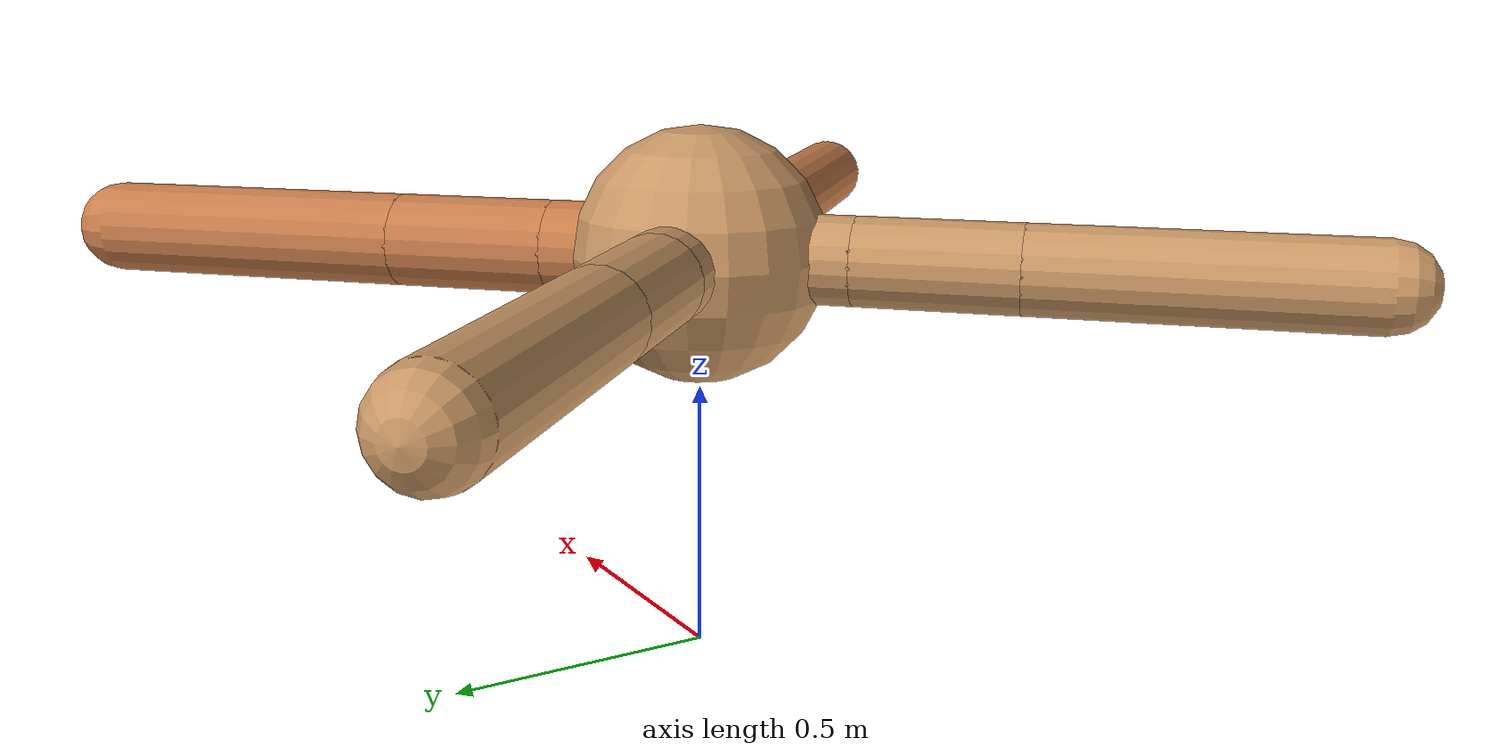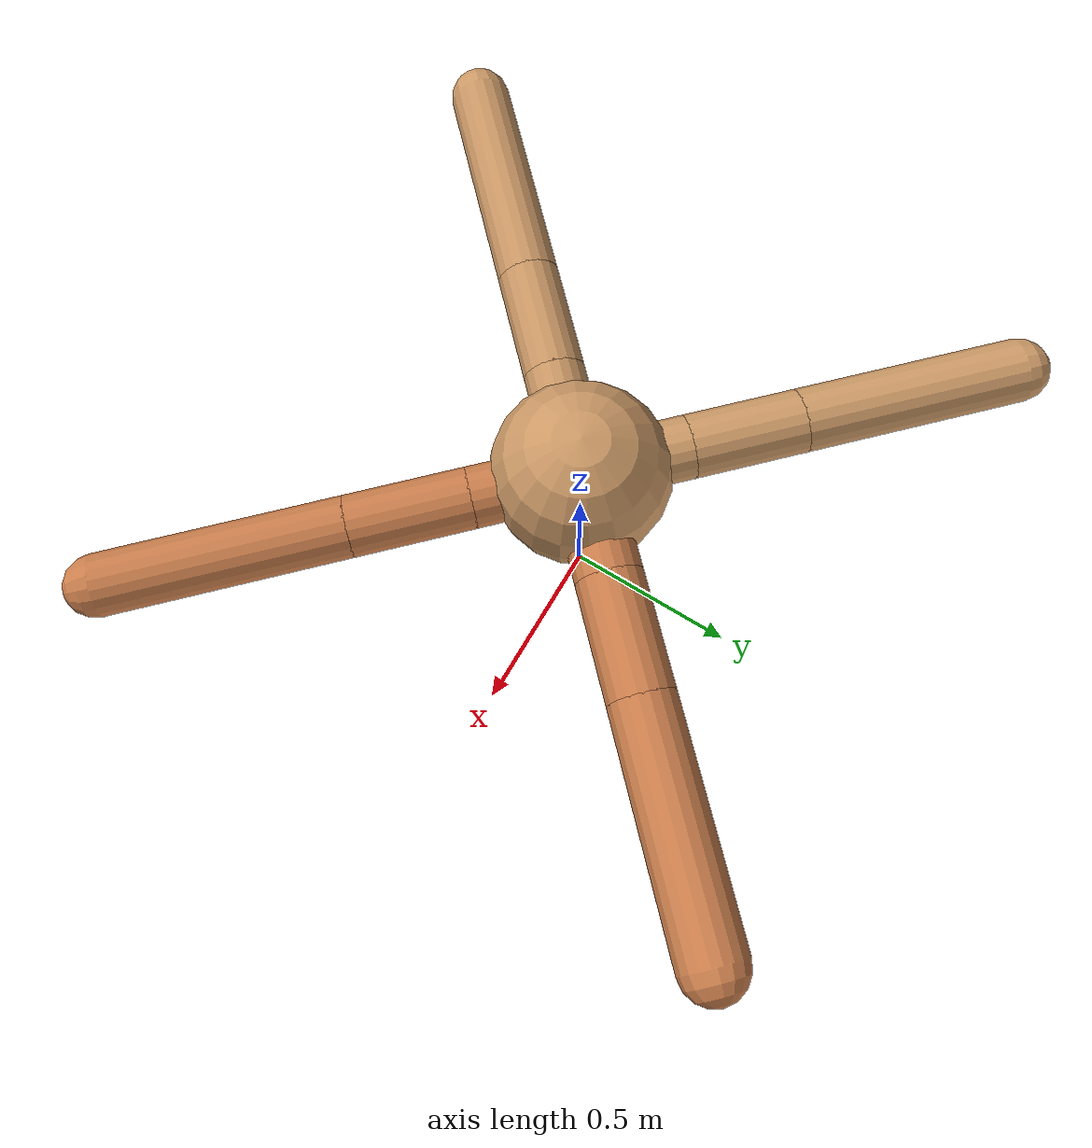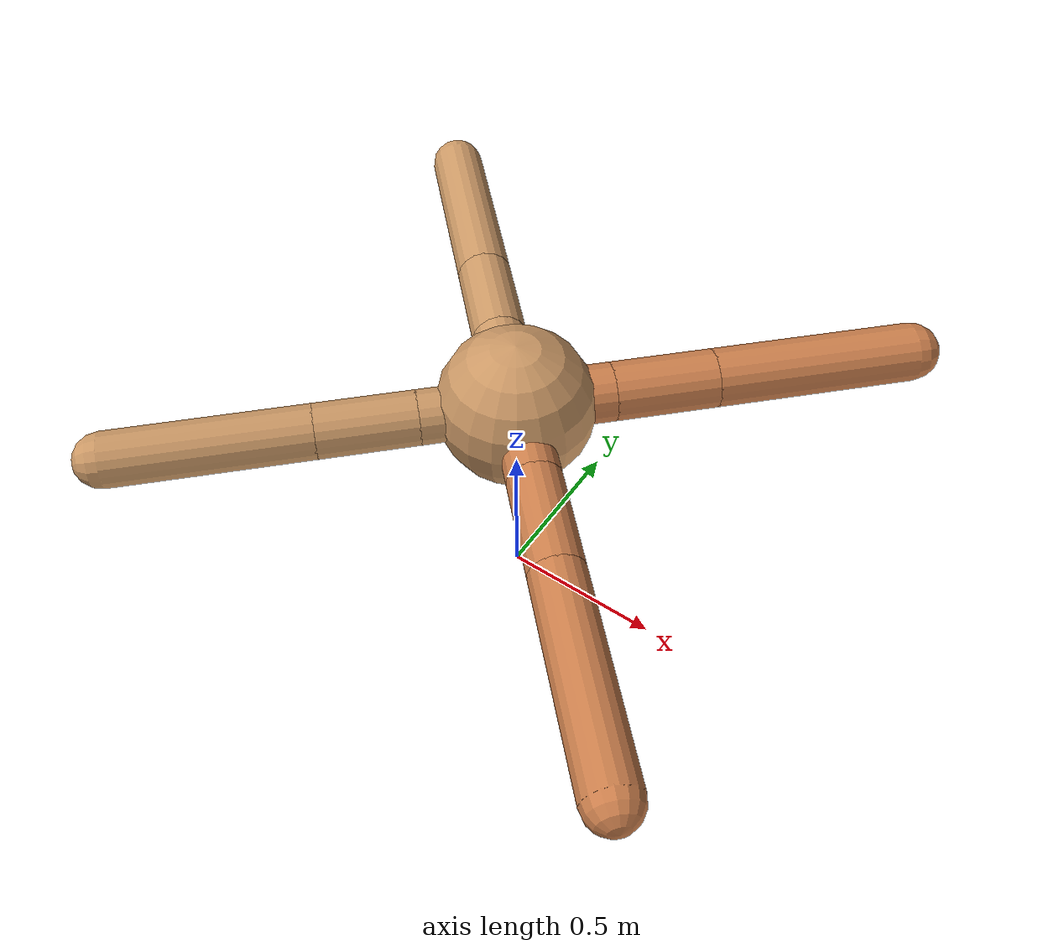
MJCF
<?xml version="1.0" ?>
<mujoco model="ant">

	<compiler angle="degree" coordinate="local" inertiafromgeom="true"/>

	<option integrator="RK4" timestep="0.01"/>

	<custom>

		<numeric data="0.0 0.0 0.55 1.0 0.0 0.0 0.0 0.0 1.0 0.0 -1.0 0.0 -1.0 0.0 1.0" name="init_qpos"/>

	</custom>

	<default>

		<joint armature="1" damping="1" limited="true"/>

		<geom conaffinity="0" condim="3" density="5.0" friction="1.5 0.1 0.1" margin="0.01" rgba="0.8 0.6 0.4 1"/>

	</default>

	<worldbody>

		<body name="torso" pos="0 0 0.75">

			<geom name="torso_geom" pos="0 0 0" size="0.2336301848781855" type="sphere"/>

			<!--joint armature="0" damping="0" limited="false" margin="0.01" name="root" pos="0 0 0" type="free"/-->

			<body name="front_left_leg" pos="0 0 0">

				<geom fromto="0 0 0 0.2 0.2 0" name="aux_1_geom" size="0.08695022410967736" type="capsule" rgba=".8 .5 .3 1"/>

				<body name="aux_1" pos="0.2 0.2 0">

					<joint axis="0 0 1" name="hip_1" pos="0.0 0.0 0.0" range="-40 40" type="hinge"/>

					<geom fromto="0 0 0 0.2152056471092676 0.2152056471092676 0" name="left_leg_geom" size="0.08695022410967736" type="capsule" rgba=".8 .5 .3 1"/>

					<body pos="0.2152056471092676 0.2152056471092676 0" name="front_left_foot">

						<joint axis="-1 1 0" name="ankle_1" pos="0.0 0.0 0.0" range="30 100" type="hinge"/>

						<geom fromto="0 0 0 0.4304112942185352 0.4304112942185352 0" name="left_ankle_geom" size="0.08695022410967736" type="capsule" rgba=".8 .5 .3 1"/>

					</body>

				</body>

			</body>

			<body name="front_right_leg" pos="0 0 0">

				<geom fromto="0 0 0 -0.2 0.2 0" name="aux_2_geom" size="0.08324727024132528" type="capsule"/>

				<body name="aux_2" pos="-0.2 0.2 0">

					<joint axis="0 0 1" name="hip_2" pos="0.0 0.0 0.0" range="-40 40" type="hinge"/>

					<geom fromto="0 0 0 -0.20816990368824628 0.20816990368824628 0" name="right_leg_geom" size="0.08324727024132528" type="capsule"/>

					<body pos="-0.20816990368824628 0.20816990368824628 0" name="front_right_foot">

						<joint axis="1 1 0" name="ankle_2" pos="0.0 0.0 0.0" range="-100 -30" type="hinge"/>

						<geom fromto="0 0 0 -0.41633980737649257 0.41633980737649257 0" name="right_ankle_geom" size="0.08324727024132528" type="capsule"/>

					</body>

				</body>

			</body>

			<body name="left_back_leg" pos="0 0 0">

				<geom fromto="0 0 0 -0.2 -0.2 0" name="aux_3_geom" size="0.08059210184880744" type="capsule"/>

				<body name="aux_3" pos="-0.2 -0.2 0">

					<joint axis="0 0 1" name="hip_3" pos="0.0 0.0 0.0" range="-40 40" type="hinge"/>

					<geom fromto="0 0 0 -0.20724500792547343 -0.20724500792547343 0" name="back_leg_geom" size="0.08059210184880744" type="capsule"/>

					<body pos="-0.20724500792547343 -0.20724500792547343 0" name="left_back_foot">

						<joint axis="-1 1 0" name="ankle_3" pos="0.0 0.0 0.0" range="-100 -30" type="hinge"/>

						<geom fromto="0 0 0 -0.41449001585094686 -0.41449001585094686 0" name="third_ankle_geom" size="0.08059210184880744" type="capsule"/>

					</body>

				</body>

			</body>

			<body name="right_back_leg" pos="0 0 0">

				<geom fromto="0 0 0 0.2 -0.2 0" name="aux_4_geom" size="0.07961816170992761" type="capsule" rgba=".8 .5 .3 1"/>

				<body name="aux_4" pos="0.2 -0.2 0">

					<joint axis="0 0 1" name="hip_4" pos="0.0 0.0 0.0" range="-40 40" type="hinge"/>

					<geom fromto="0 0 0 0.21988161266721884 -0.21988161266721884 0" name="rightback_leg_geom" size="0.07961816170992761" type="capsule" rgba=".8 .5 .3 1"/>

					<body pos="0.21988161266721884 -0.21988161266721884 0" name="right_back_foot">

						<joint axis="1 1 0" name="ankle_4" pos="0.0 0.0 0.0" range="30 100" type="hinge"/>

						<geom fromto="0 0 0 0.4397632253344377 -0.4397632253344377 0" name="fourth_ankle_geom" size="0.07961816170992761" type="capsule" rgba=".8 .5 .3 1"/>

					</body>

				</body>

			</body>

		</body>

	</worldbody>

	<actuator>

		<motor ctrllimited="true" ctrlrange="-1.0 1.0" joint="hip_4" gear="150"/>

		<motor ctrllimited="true" ctrlrange="-1.0 1.0" joint="ankle_4" gear="150"/>

		<motor ctrllimited="true" ctrlrange="-1.0 1.0" joint="hip_1" gear="150"/>

		<motor ctrllimited="true" ctrlrange="-1.0 1.0" joint="ankle_1" gear="150"/>

		<motor ctrllimited="true" ctrlrange="-1.0 1.0" joint="hip_2" gear="150"/>

		<motor ctrllimited="true" ctrlrange="-1.0 1.0" joint="ankle_2" gear="150"/>

		<motor ctrllimited="true" ctrlrange="-1.0 1.0" joint="hip_3" gear="150"/>

		<motor ctrllimited="true" ctrlrange="-1.0 1.0" joint="ankle_3" gear="150"/>

	</actuator>

</mujoco>
